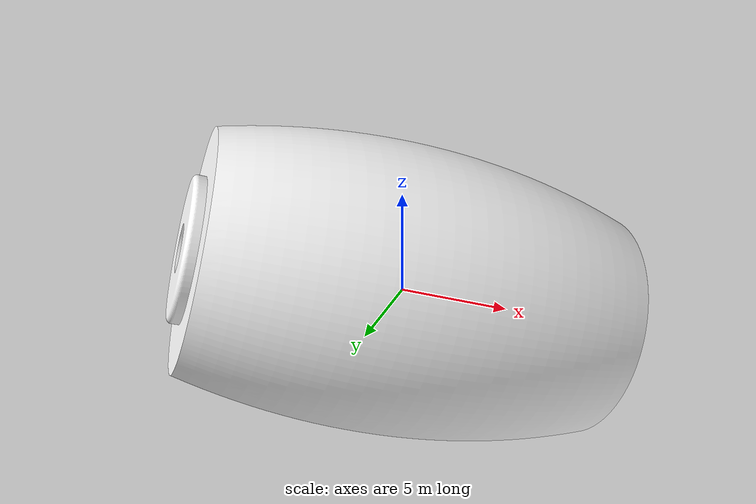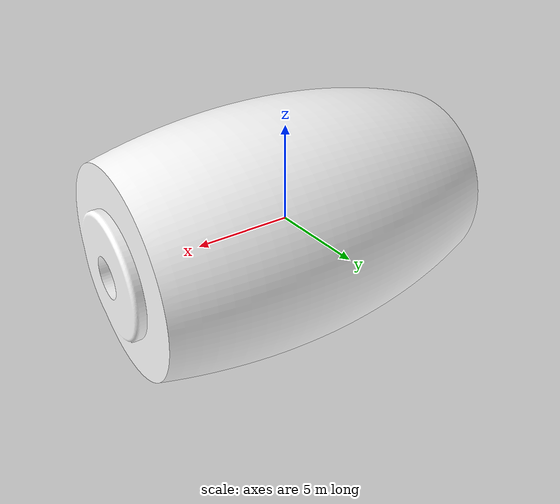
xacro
<?xml version="1.0" ?>
<robot xmlns:xacro="http://www.ros.org/wiki/xacro"
	name="roller">
	<link name="origin_link"/>

	<link name="roller_link">

			<inertial>

				<mass value="0.00113845"/>
				<inertia
					ixx="2.53776e-08"
					ixy="0"
					ixz="0"
					iyy="2.53776e-08"
					iyz="0"
					izz="1.47666e-08"
				/>

			</inertial>
			<visual>

				<geometry>

					<mesh filename="package://description/mesh/rubberwheel.stl"/>

				</geometry>
				<material name="roller_material">

					<color rgba="1 1 1 0"/>

				</material>

			</visual>
			<collision>

				<geometry>

					<mesh filename="package://description/mesh/rubberwheel.stl"/>

				</geometry>

			</collision>

		</link>
		<joint
			name="base_joint"
			type="fixed">

			<parent link="origin_link"/>
			<child link="roller_link"/>
			<axis xyz="0 0 1"/>
			<origin
				xyz="0 0 0"
				rpy="0 0 0"/>

		</joint>
</robot>
